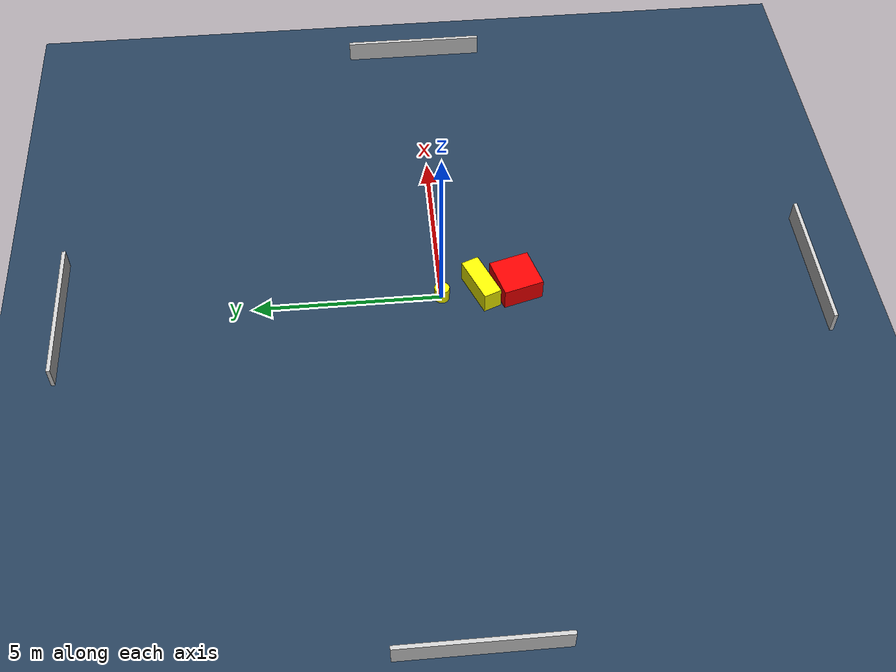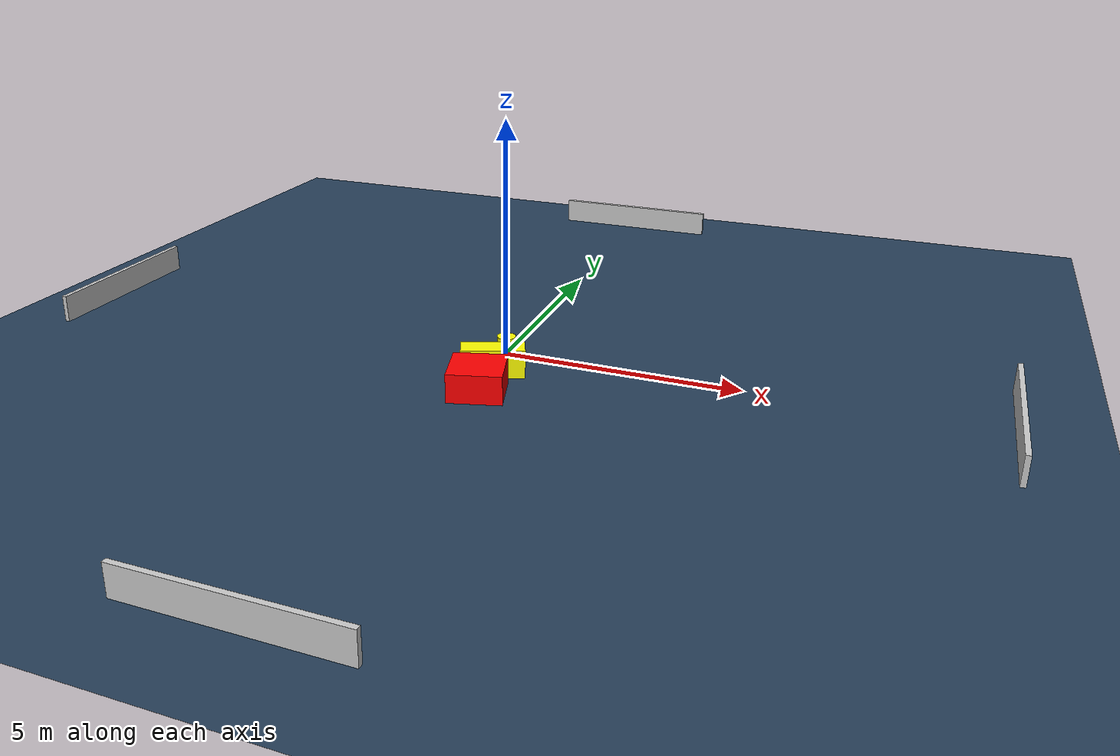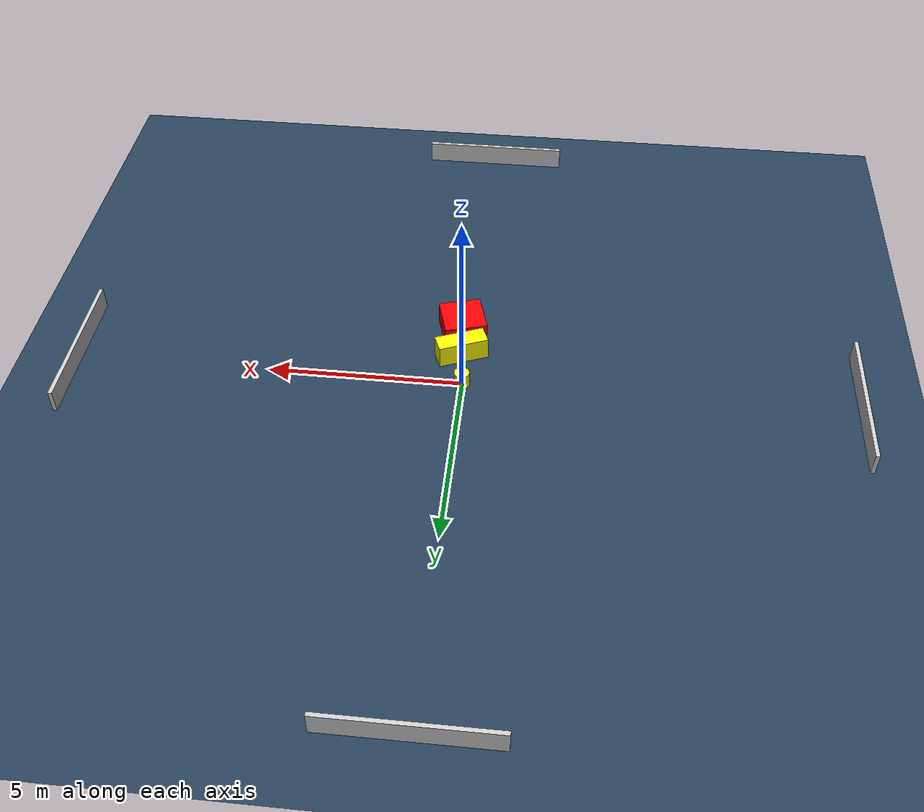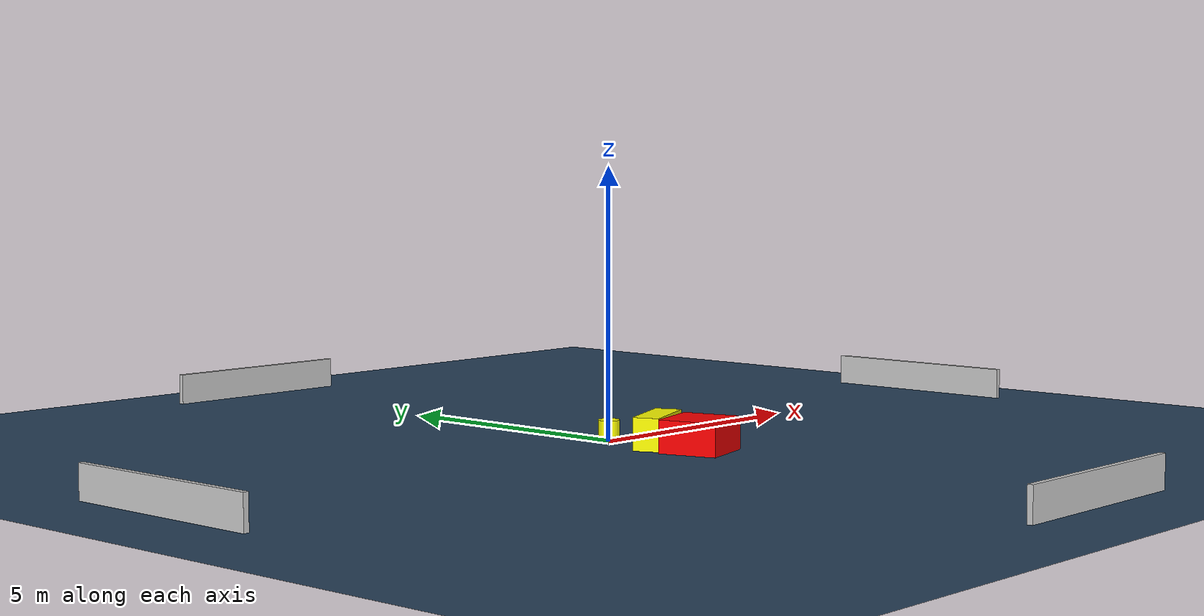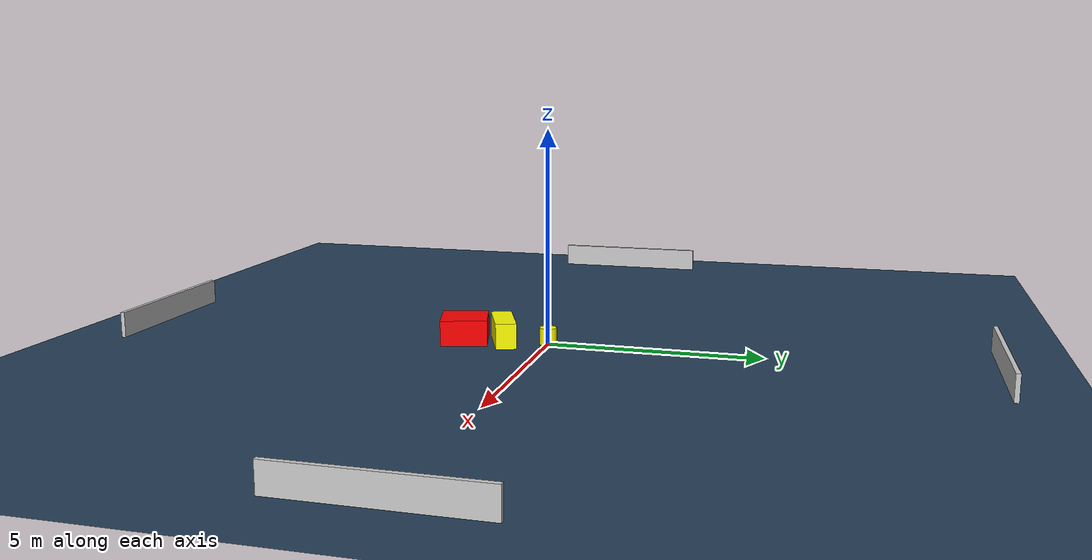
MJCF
<?xml version="1.0" ?>
<mujoco model="generated_environment">
  <option timestep="0.01" integrator="RK4" cone="elliptic"/>
  <default>
    <geom density="1"/>
  </default>
  <asset>
    <texture builtin="gradient" height="3072" name="skybox" rgb1="0.3 0.5 0.7" rgb2="0 0 0" type="skybox" width="512"/>
    <texture builtin="checker" height="300" name="groundplane" rgb1="0.2 0.3 0.4" rgb2="0.1 0.2 0.3" type="2d" width="300"/>
    <material name="groundplane" reflectance="0.2" texrepeat="5 5" texture="groundplane"/>
  </asset>
  <worldbody>
    <light dir="0 0 -1" directional="true" pos="0 0 1.5"/>
    <geom condim="3" friction="0.5 0.005 0.001" material="groundplane" name="floor" pos="0 0 0" size="0 0 0.05" type="plane"/>
    <body name="walls">
      <geom name="wall_1" condim="4" pos="-10.0 0.0 0.3" rgba="0.800000011920929 0.800000011920929 0.800000011920929 1.0" size="0.05 2.0 0.3" type="box"/>
      <geom name="wall_2" condim="4" pos="10.0 0.0 0.3" rgba="0.800000011920929 0.800000011920929 0.800000011920929 1.0" size="0.05 2.0 0.3" type="box"/>
      <geom name="wall_3" condim="4" pos="0.0 -10.0 0.3" rgba="0.800000011920929 0.800000011920929 0.800000011920929 1.0" size="2.0 0.05 0.3" type="box"/>
      <geom name="wall_4" condim="4" pos="0.0 10.0 0.3" rgba="0.800000011920929 0.800000011920929 0.800000011920929 1.0" size="2.0 0.05 0.3" type="box"/>
    </body>
    <body name="robot">
      <joint name="joint_x" type="slide" pos="0 0 0" axis="1 0 0"/>
      <joint name="joint_y" type="slide" pos="0 0 0" axis="0 1 0"/>
      <geom name="robot" type="cylinder" pos="0.0 0.0 0.2" size="0.2 0.2 0.0" mass="5.0" friction="1.0 0.005 0.0001" condim="4" rgba="1.0 1.0 0.0 1.0"/>
    </body>
    <body name="obstacle_1_movable">
      <geom name="obstacle_1_movable" condim="4" pos="0.12184818202526644 -1.0502284419719727 0.3" euler="0 0 22.198472038177847" friction="0.0 0.005 0.001" rgba="1.0 1.0 0.0 1.0" size="0.6539090676798043 0.24475940424200854 0.3" type="box" mass="0.1"/>
      <joint type="free"/>
    </body>
    <body name="obstacle_2_static">
      <geom name="obstacle_2_static" condim="4" pos="0.180537979947977 -1.988805886058334 0.3" euler="0 0 285.68277845269307" friction="0.0 0.005 0.001" rgba="1.0 0.0 0.0 1.0" size="0.5441147710861657 0.5526422517137691 0.3" type="box"/>
    </body>
  </worldbody>
  <actuator>
    <motor name="actuator_x" joint="joint_x" gear="1" ctrlrange="-1 1"/>
    <motor name="actuator_y" joint="joint_y" gear="1" ctrlrange="-1 1"/>
  </actuator>
</mujoco>
